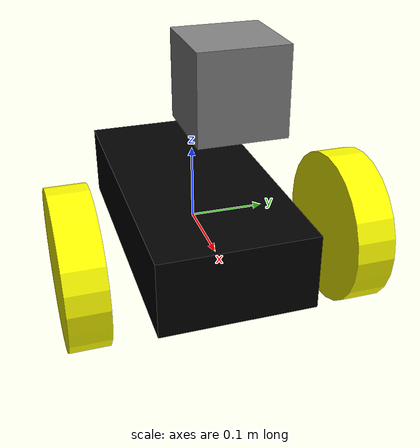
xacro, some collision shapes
<?xml version='1.0'?>

<robot name="myrobot" xmlns:xacro="http://www.ros.org/wiki/xacro">

  <xacro:include filename="$(find description_my_robot)/urdf/spcbot.gazebo"/>

  <!-- مواد الروبوت -->
  <material name="black">
    <color rgba="0.0 0.0 0.0 1.0"/>
  </material>

  <material name="yellow">
    <color rgba="1.0 1.0 0.0 1.0"/>
  </material>

  <material name="gray">
    <color rgba="0.5 0.5 0.5 1.0"/>
  </material>
  <!--_______________________________________________________________chassis____________________________________________________________________ -->

  <link name='chassis'>

    <collision name='collision'>
      <geometry>
        <box size=".4 .2 .1"/>
      </geometry>
    </collision>

    <visual name='chassis_visual'>
      <origin xyz="0 0 0" rpy=" 0 0 0"/>
      <geometry>
        <box size=".4 .2 .1"/>
      </geometry>
      <material name="black"/>
    </visual>

    <inertial>
      <origin xyz="0 0 0" rpy="0 0 0"/>
      <mass value="1.3729096e+00"/>
      <inertia ixx="8.7002718e-03" ixy="-4.7576583e-05" ixz="1.1160499e-04"
               iyy="8.6195418e-03" iyz="-3.5422299e-06"
               izz="1.4612727e-02" />
    </inertial>

    <collision name='caster_collision'>
      <origin xyz="-0.15 0 -0.05" rpy=" 0 0 0"/>
      <geometry>
        <sphere radius="0.05"/>
      </geometry>
       <surface>
        <friction>
          <ode>
            <mu>0.1</mu>
            <mu2>0.1</mu2>
          </ode>
        </friction>
      </surface>
    </collision>

    <visual name='caster_visual'>
      <origin xyz="-0.15 0 -0.05" rpy=" 0 0 0"/>
      <geometry>
        <sphere radius="0.05"/>
      </geometry>
    </visual>

  </link>

  <!--_______________________________________________________________ base_footprint ____________________________________________________________________ -->

  <link name="base_footprint"/>

  <joint name="base_joint" type="fixed">
    <parent link="base_footprint"/>
    <child link="chassis"/>
    <origin xyz="0 0 0.01" rpy=" 0 0 0"/>

  </joint>

  <!--_______________________________________________________________left_wheel____________________________________________________________________ -->

  <link name="left_wheel">
    <!--origin xyz="0.1 0.13 0.1" rpy="0 1.5707 1.5707"/-->

    <collision name="collision">
      <origin xyz="0 0 0" rpy="0 1.5707 1.5707"/>
      <geometry>
        <cylinder radius="0.1" length="0.05"/>
      </geometry>
    </collision>

    <visual name="left_wheel_visual">
      <origin xyz="0 0 0" rpy="0 1.5707 1.5707"/>
      <geometry>
        <cylinder radius="0.1" length="0.05"/>
      </geometry>
      <material name="yellow"/>
    </visual>

    <inertial>
      <origin xyz="0 0 0" rpy="0 1.5707 1.5707"/>
      <mass value="2.8498940e-02" />
      <inertia ixx="1.1175580e-05" ixy="-4.2369783e-11" ixz="-5.9381719e-09"
               iyy="1.1192413e-05" iyz="-1.4400107e-11"
               izz="2.0712558e-05" />
      </inertial>
  </link>

  <joint type="continuous" name="left_wheel_hinge">
    <origin xyz="0.1 0.175 0" rpy="0 0 0"/>
    <!--origin xyz="0.1 0.13 0" rpy="0 1.5707 1.5707"/-->
    <child link="left_wheel"/>
    <parent link="chassis"/>
    <axis xyz="0 1 0" rpy="0 0 0"/>
  </joint>

  <!--_______________________________________________________________right_wheel____________________________________________________________________ -->

  <link name="right_wheel">
    <!--origin xyz="0.1 -0.13 0.1" rpy="0 1.5707 1.5707"/-->
    <collision name="collision">
      <origin xyz="0 0 0" rpy="0 1.5707 1.5707"/>
      <geometry>
        <cylinder radius="0.1" length="0.05"/>
      </geometry>
    </collision>

    <visual name="right_wheel_visual">
      <origin xyz="0 0 0" rpy="0 1.5707 1.5707"/>
      <geometry>
        <cylinder radius="0.1" length="0.05"/>
      </geometry>
      <material name="yellow"/>
    </visual>

    <inertial>
      <origin xyz="0 0 0" rpy="0 1.5707 1.5707"/>
      <mass value="2.8498940e-02" />
      <inertia ixx="1.1175580e-05" ixy="-4.2369783e-11" ixz="-5.9381719e-09"
               iyy="1.1192413e-05" iyz="-1.4400107e-11"
               izz="2.0712558e-05" />
      </inertial>
  </link>

  <joint type="continuous" name="right_wheel_hinge">
    <origin xyz="0.1 -0.175 0" rpy="0 0 0"/>
    <!--origin xyz="0.1 -0.13 0" rpy="0 1.5707 1.5707"/-->
    <child link="right_wheel"/>
    <parent link="chassis"/>
    <axis xyz="0 1 0" rpy="0 0 0"/>
  </joint>

<!--_______________________________________________________________Hokuyo Laser____________________________________________________________________ -->

  <link name="hokuyo_link">
    <collision>
      <origin xyz="0 0 0.1" rpy="0 0 0"/>
      <geometry>
    <box size="0.1 0.1 0.1"/>
      </geometry>
    </collision>

    <visual>
      <origin xyz="0 0 0.1" rpy="0 0 0"/>
      <geometry>
        <mesh filename="package://turtlebot3_description/meshes/sensors/lds.stl" scale="0.001 0.001 0.001"/>
      </geometry>
      <material name="gray"/>
    </visual>

    <inertial>
      <mass value="0.114" />
      <origin xyz="0 0 0" rpy="0 0 0"/>
      <inertia ixx="0.001" ixy="0.0" ixz="0.0"
               iyy="0.001" iyz="0.0"
               izz="0.001" />
    </inertial>
  </link>

  <joint name="hokuyo_joint" type="fixed">
    <origin xyz="0.15 0 0.13" rpy="0 0 0"/>
    <parent link="chassis"/>
    <child link="hokuyo_link"/>
  </joint>

</robot>
